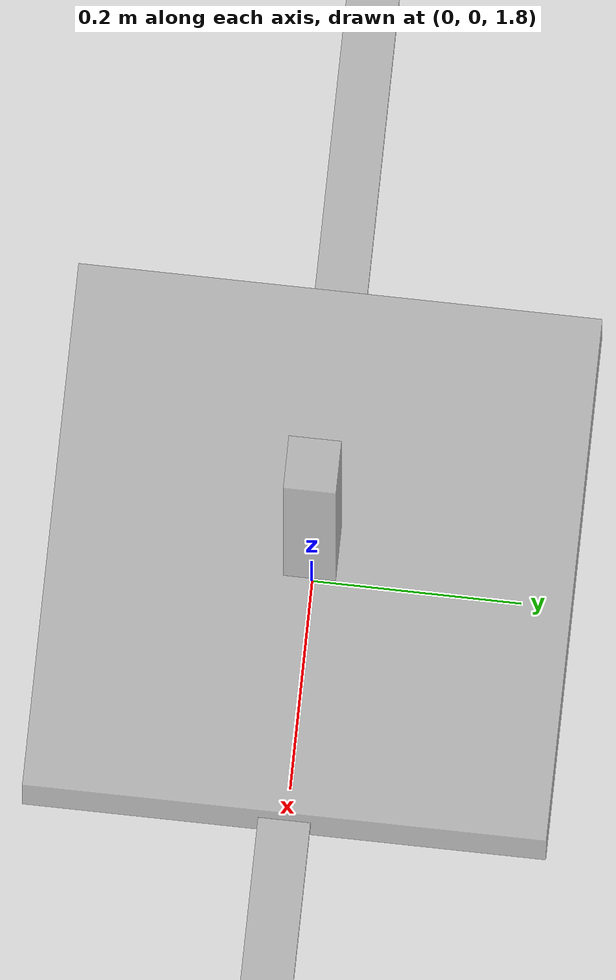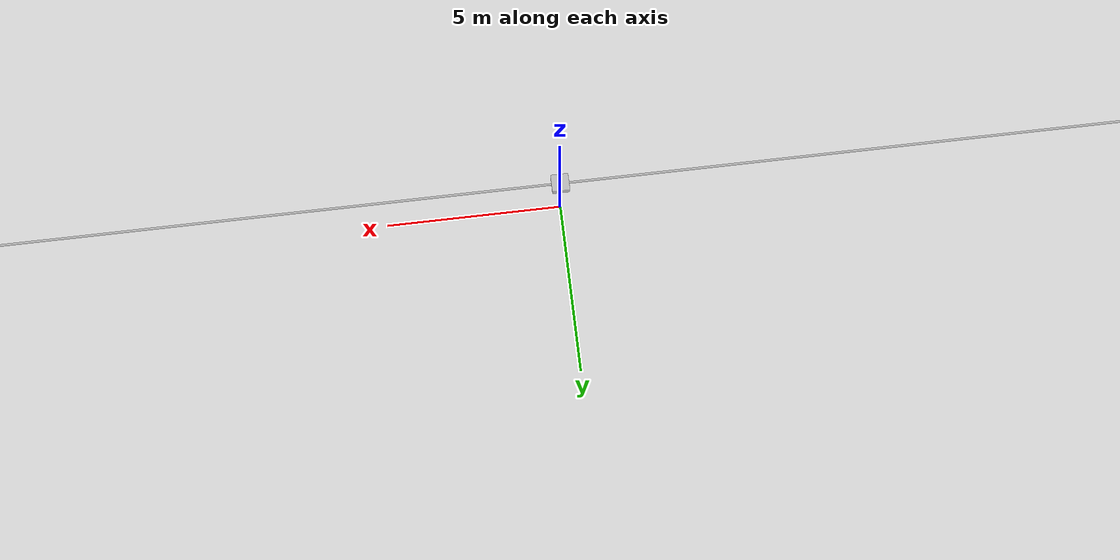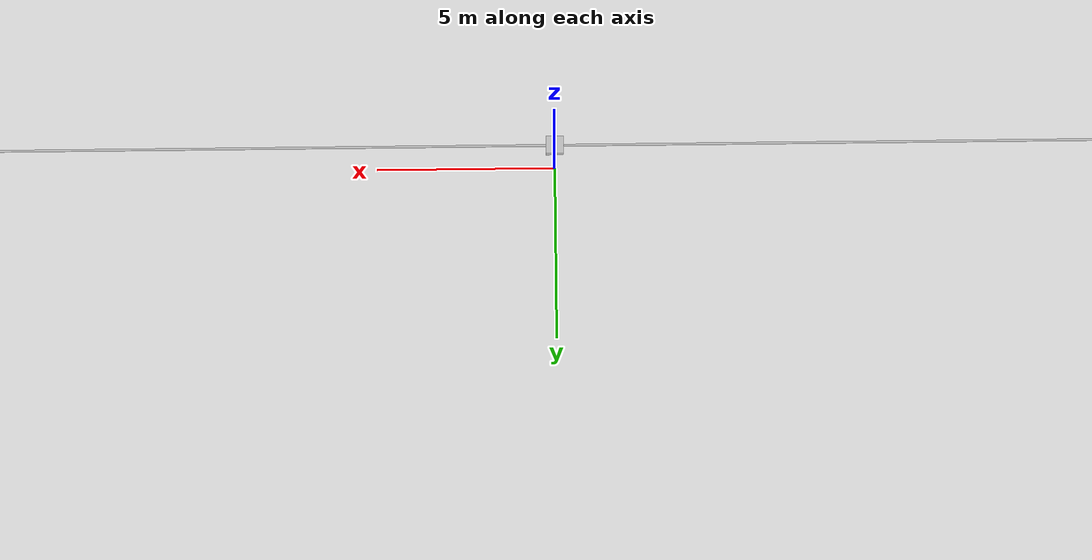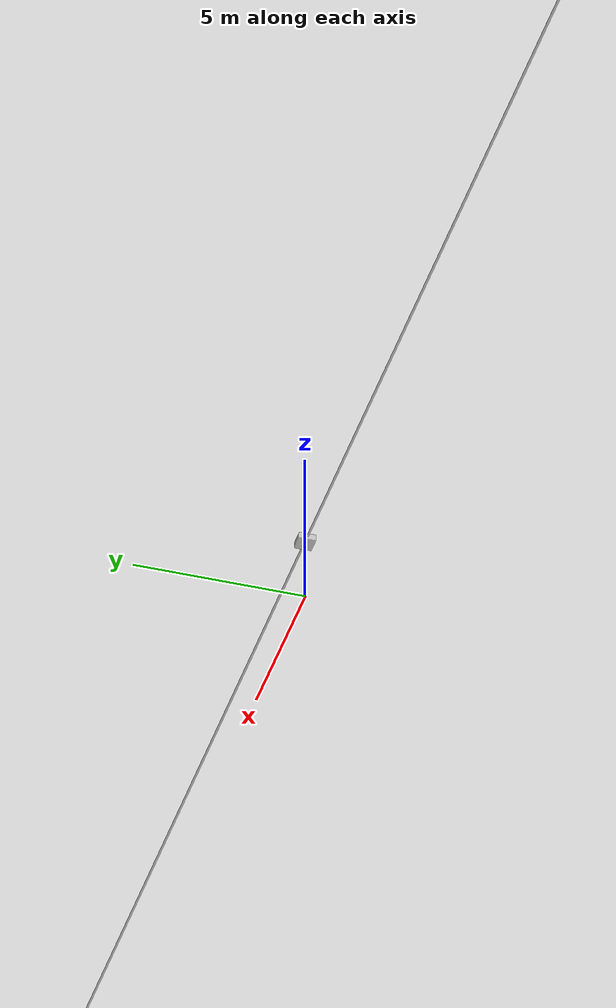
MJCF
<mujoco model="cartpole">
  <option timestep="0.01" integrator="RK4">
    <flag sensornoise="disable" contact="disable" energy="enable"/>
  </option>
  <compiler angle="radian" autolimits="true"/>
  <statistic meansize="0.434336" extent="300" center="0 0 2"/>
  <worldbody>
    <geom size="150 0.025 0.025" pos="0 0 2" type="box" contype="0" conaffinity="0" group="1" density="0" rgba="0.75 0.75 0.75 0.8"/>
    <body name="cart" pos="0 0 2">
      <inertial pos="0 0 0" mass="2" diaginertia="1 1 1"/>
      <joint name="slider_to_cart" pos="0 0 0" axis="1 0 0" type="slide" range="-150 150"/>
      <geom size="0.25 0.25 0.1" type="box" contype="0" conaffinity="0" group="1" density="0" rgba="0.75 0.75 0.75 0.8"/>
      <geom size="0.25 0.25 0.1" type="box" rgba="0.75 0.75 0.75 0.8"/>
      <body name="pole">
        <inertial pos="0 0 0.5" quat="0.707107 0 0 0.707107" mass="0.2" diaginertia="0.00555673 0.00555673 0.00555673"/>
        <joint name="cart_to_pole" pos="0 0 0" axis="0 1 0"/>
        <geom size="0.025 0.025 0.5" pos="0 0 0.5" type="box" contype="0" conaffinity="0" group="1" density="0" rgba="0.75 0.75 0.75 0.8"/>
        <geom size="0.025 0.025 0.5" pos="0 0 0.5" type="box" rgba="0.75 0.75 0.75 0.8"/>
      </body>
    </body>
  </worldbody>
  <actuator>
    <motor joint="slider_to_cart" name="torque" gear="1" ctrllimited="true" ctrlrange="-50 50"/>
  </actuator>
  <sensor>
    <jointpos joint="slider_to_cart" noise="0.0"/>
    <jointvel joint="cart_to_pole" noise="0.0"/>
  </sensor>
</mujoco>
